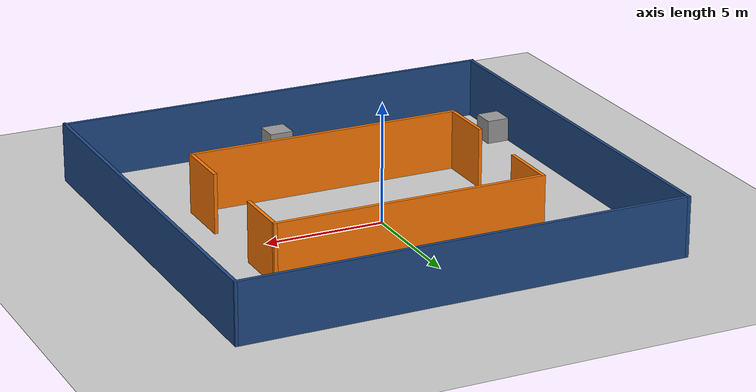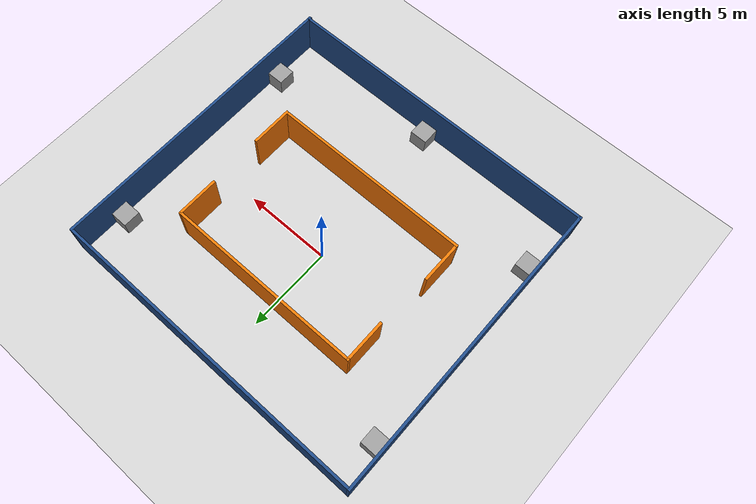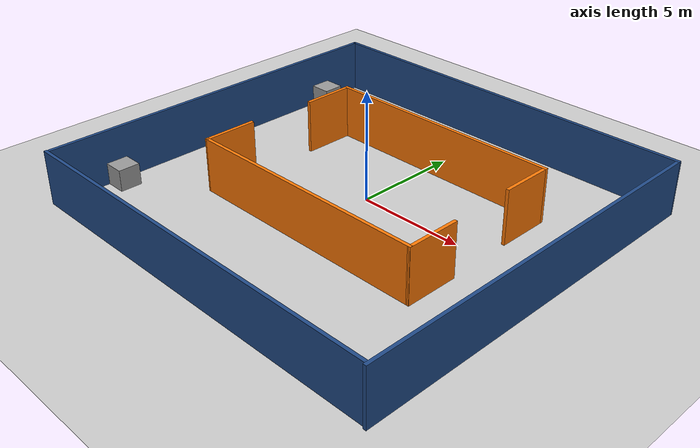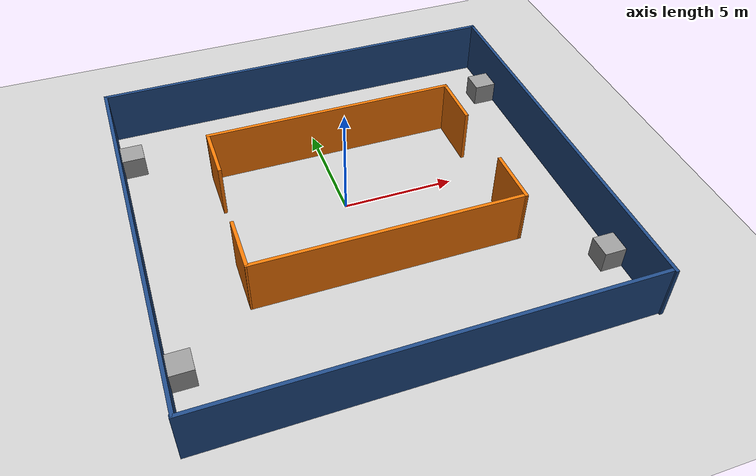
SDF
<sdf version="1.7">
 <world name="default">
  <light name="sun" type="directional">
   <pose>0 0 10 0 -0 0</pose>
   <diffuse>0.8 0.8 0.8 1</diffuse>
   <specular>0.2 0.2 0.2 1</specular>
   <attenuation>
    <range>1000</range>
    <constant>0.9</constant>
    <linear>0.01</linear>
    <quadratic>0.001</quadratic>
   </attenuation>
   <direction>-0.5 0.1 -0.9</direction>
   <spot><inner_angle>0</inner_angle><outer_angle>0</outer_angle><falloff>0</falloff></spot>
  </light>
  <model name="ground_plane">
   <static>1</static>
   <link name="link">
    <collision name="collision">
     <geometry><plane><normal>0 0 1</normal><size>100 100</size></plane></geometry>
     <surface>
      <contact><collide_bitmask>65535</collide_bitmask></contact>
      <friction><ode><mu>100</mu><mu2>50</mu2></ode></friction>
     </surface>
    </collision>
    <visual name="visual">
     <cast_shadows>0</cast_shadows>
     <geometry><plane><normal>0 0 1</normal><size>100 100</size></plane></geometry>
     <material>
      <script><uri>file://media/materials/scripts/gazebo.material</uri><name>Gazebo/Grey</name></script>
     </material>
    </visual>
   </link>
  </model>
  <gravity>0 0 -9.8</gravity>
  <magnetic_field>6e-06 2.3e-05 -4.2e-05</magnetic_field>
  <atmosphere type="adiabatic"/>
  <physics type="ode">
   <max_step_size>0.001</max_step_size>
   <real_time_factor>1</real_time_factor>
   <real_time_update_rate>1000</real_time_update_rate>
  </physics>
  <scene><ambient>0.4 0.4 0.4 1</ambient><background>0.7 0.7 0.7 1</background><shadows>1</shadows></scene>
  <spherical_coordinates>
   <surface_model>EARTH_WGS84</surface_model>
   <latitude_deg>0</latitude_deg>
   <longitude_deg>0</longitude_deg>
   <elevation>0</elevation>
   <heading_deg>0</heading_deg>
  </spherical_coordinates>
  <model name="1">
   <pose>0.331223 -0.788924 0 0 -0 0</pose>
   <link name="Wall_0">
    <collision name="Wall_0_Collision">
     <geometry><box><size>17.75 0.15 2.5</size></box></geometry>
     <pose>0 0 1.25 0 -0 0</pose>
    </collision>
    <visual name="Wall_0_Visual">
     <pose>0 0 1.25 0 -0 0</pose>
     <geometry><box><size>17.75 0.15 2.5</size></box></geometry>
     <material>
      <script><uri>file://media/materials/scripts/gazebo.material</uri><name>Gazebo/Grey</name></script>
      <ambient>0.12549 0.290196 0.529412 1</ambient>
     </material>
     <meta><layer>0</layer></meta>
    </visual>
    <pose>-9.29122 0.058924 0 0 -0 1.5708</pose>
   </link>
   <link name="Wall_1">
    <collision name="Wall_1_Collision">
     <geometry><box><size>18.75 0.15 2.5</size></box></geometry>
     <pose>0 0 1.25 0 -0 0</pose>
    </collision>
    <visual name="Wall_1_Visual">
     <pose>0 0 1.25 0 -0 0</pose>
     <geometry><box><size>18.75 0.15 2.5</size></box></geometry>
     <material>
      <script><uri>file://media/materials/scripts/gazebo.material</uri><name>Gazebo/Grey</name></script>
      <ambient>0.12549 0.290196 0.529412 1</ambient>
     </material>
     <meta><layer>0</layer></meta>
    </visual>
    <pose>0.008777 8.85892 0 0 -0 0</pose>
   </link>
   <link name="Wall_11">
    <collision name="Wall_11_Collision">
     <geometry><box><size>2.5 0.15 2.5</size></box></geometry>
     <pose>0 0 1.25 0 -0 0</pose>
    </collision>
    <visual name="Wall_11_Visual">
     <pose>0 0 1.25 0 -0 0</pose>
     <geometry><box><size>2.5 0.15 2.5</size></box></geometry>
     <material>
      <script><uri>file://media/materials/scripts/gazebo.material</uri><name>Gazebo/Grey</name></script>
      <ambient>0.996078 0.47451 0.0196078 1</ambient>
     </material>
     <meta><layer>0</layer></meta>
    </visual>
    <pose>-5.40371 3.37841 0 0 -0 -1.5708</pose>
   </link>
   <link name="Wall_14">
    <collision name="Wall_14_Collision">
     <geometry><box><size>2.5 0.15 2.5</size></box></geometry>
     <pose>0 0 1.25 0 -0 0</pose>
    </collision>
    <visual name="Wall_14_Visual">
     <pose>0 0 1.25 0 -0 0</pose>
     <geometry><box><size>2.5 0.15 2.5</size></box></geometry>
     <material>
      <script><uri>file://media/materials/scripts/gazebo.material</uri><name>Gazebo/Grey</name></script>
      <ambient>0.996078 0.47451 0.0196078 1</ambient>
     </material>
     <meta><layer>0</layer></meta>
    </visual>
    <pose>-5.59916 -2.21685 0 0 -0 1.5708</pose>
   </link>
   <link name="Wall_16">
    <collision name="Wall_16_Collision">
     <geometry><box><size>2.5 0.15 2.5</size></box></geometry>
     <pose>0 0 1.25 0 -0 0</pose>
    </collision>
    <visual name="Wall_16_Visual">
     <pose>0 0 1.25 0 -0 0</pose>
     <geometry><box><size>2.5 0.15 2.5</size></box></geometry>
     <material>
      <script><uri>file://media/materials/scripts/gazebo.material</uri><name>Gazebo/Grey</name></script>
      <ambient>0.996078 0.47451 0.0196078 1</ambient>
     </material>
     <meta><layer>0</layer></meta>
    </visual>
    <pose>5.98276 -2.22541 0 0 -0 1.5708</pose>
   </link>
   <link name="Wall_18">
    <collision name="Wall_18_Collision">
     <geometry><box><size>2.5 0.15 2.5</size></box></geometry>
     <pose>0 0 1.25 0 -0 0</pose>
    </collision>
    <visual name="Wall_18_Visual">
     <pose>0 0 1.25 0 -0 0</pose>
     <geometry><box><size>2.5 0.15 2.5</size></box></geometry>
     <material>
      <script><uri>file://media/materials/scripts/gazebo.material</uri><name>Gazebo/Grey</name></script>
      <ambient>0.996078 0.47451 0.0196078 1</ambient>
     </material>
     <meta><layer>0</layer></meta>
    </visual>
    <pose>5.90607 3.37841 0 0 -0 -1.5708</pose>
   </link>
   <link name="Wall_2">
    <collision name="Wall_2_Collision">
     <geometry><box><size>17.8679 0.15 2.5</size></box></geometry>
     <pose>0 0 1.25 0 -0 0</pose>
    </collision>
    <visual name="Wall_2_Visual">
     <pose>0 0 1.25 0 -0 0</pose>
     <geometry><box><size>17.8679 0.15 2.5</size></box></geometry>
     <material>
      <script><uri>file://media/materials/scripts/gazebo.material</uri><name>Gazebo/Grey</name></script>
      <ambient>0.12549 0.290196 0.529412 1</ambient>
     </material>
     <meta><layer>0</layer></meta>
    </visual>
    <pose>9.31317 -0 0 0 -0 -1.5703</pose>
   </link>
   <link name="Wall_3">
    <collision name="Wall_3_Collision">
     <geometry><box><size>18.75 0.15 2.5</size></box></geometry>
     <pose>0 0 1.25 0 -0 0</pose>
    </collision>
    <visual name="Wall_3_Visual">
     <pose>0 0 1.25 0 -0 0</pose>
     <geometry><box><size>18.75 0.15 2.5</size></box></geometry>
     <material>
      <script><uri>file://media/materials/scripts/gazebo.material</uri><name>Gazebo/Grey</name></script>
      <ambient>0.12549 0.290196 0.529412 1</ambient>
     </material>
     <meta><layer>0</layer></meta>
    </visual>
    <pose>-0.017608 -8.78857 0 0 -0 3.14159</pose>
   </link>
   <link name="Wall_7">
    <collision name="Wall_7_Collision">
     <geometry><box><size>11.4598 0.15 2.5</size></box></geometry>
     <pose>0 0 1.25 0 -0 0</pose>
    </collision>
    <visual name="Wall_7_Visual">
     <pose>0 0 1.25 0 -0 0</pose>
     <geometry><box><size>11.4598 0.15 2.5</size></box></geometry>
     <material>
      <script><uri>file://media/materials/scripts/gazebo.material</uri><name>Gazebo/Grey</name></script>
      <ambient>0.996078 0.47451 0.0196078 1</ambient>
     </material>
     <meta><layer>0</layer></meta>
    </visual>
    <pose>0.251181 4.55341 0 0 -0 3.14159</pose>
   </link>
   <link name="Wall_9">
    <collision name="Wall_9_Collision">
     <geometry><box><size>11.7167 0.15 2.5</size></box></geometry>
     <pose>0 0 1.25 0 -0 0</pose>
    </collision>
    <visual name="Wall_9_Visual">
     <pose>0 0 1.25 0 -0 0</pose>
     <geometry><box><size>11.7167 0.15 2.5</size></box></geometry>
     <material>
      <script><uri>file://media/materials/scripts/gazebo.material</uri><name>Gazebo/Grey</name></script>
      <ambient>0.996078 0.47451 0.0196078 1</ambient>
     </material>
     <meta><layer>0</layer></meta>
    </visual>
    <pose>0.184199 -3.39613 0 0 -0 -0.00074</pose>
   </link>
   <static>1</static>
  </model>
  <model name="unit_box">
   <pose>9.11179 -6.53072 0.5 0 -0 0.00038</pose>
   <link name="link">
    <inertial>
     <mass>1</mass>
     <inertia>
      <ixx>0.166667</ixx>
      <ixy>0</ixy>
      <ixz>0</ixz>
      <iyy>0.166667</iyy>
      <iyz>0</iyz>
      <izz>0.166667</izz>
     </inertia>
    </inertial>
    <collision name="collision"><geometry><box><size>1 1 1</size></box></geometry></collision>
    <visual name="visual">
     <geometry><box><size>1 1 1</size></box></geometry>
     <material>
      <script><name>Gazebo/Grey</name><uri>file://media/materials/scripts/gazebo.material</uri></script>
     </material>
    </visual>
   </link>
  </model>
  <model name="unit_box_0">
   <pose>0.535246 -9.01132 0.5 0 -0 1e-06</pose>
   <link name="link">
    <inertial>
     <mass>1</mass>
     <inertia>
      <ixx>0.166667</ixx>
      <ixy>0</ixy>
      <ixz>0</ixz>
      <iyy>0.166667</iyy>
      <iyz>0</iyz>
      <izz>0.166667</izz>
     </inertia>
    </inertial>
    <collision name="collision"><geometry><box><size>1 1 1</size></box></geometry></collision>
    <visual name="visual">
     <geometry><box><size>1 1 1</size></box></geometry>
     <material>
      <script><name>Gazebo/Grey</name><uri>file://media/materials/scripts/gazebo.material</uri></script>
     </material>
    </visual>
   </link>
  </model>
  <model name="unit_box_1">
   <pose>-8.42455 -6.51408 0.499995 0 9e-06 2e-06</pose>
   <link name="link">
    <inertial>
     <mass>1</mass>
     <inertia>
      <ixx>0.166667</ixx>
      <ixy>0</ixy>
      <ixz>0</ixz>
      <iyy>0.166667</iyy>
      <iyz>0</iyz>
      <izz>0.166667</izz>
     </inertia>
    </inertial>
    <collision name="collision"><geometry><box><size>1 1 1</size></box></geometry></collision>
    <visual name="visual">
     <geometry><box><size>1 1 1</size></box></geometry>
     <material>
      <script><name>Gazebo/Grey</name><uri>file://media/materials/scripts/gazebo.material</uri></script>
     </material>
    </visual>
   </link>
  </model>
  <model name="unit_box_2">
   <pose>-8.3897 5.51626 0.5 0 -0 4e-06</pose>
   <link name="link">
    <inertial>
     <mass>1</mass>
     <inertia>
      <ixx>0.166667</ixx>
      <ixy>0</ixy>
      <ixz>0</ixz>
      <iyy>0.166667</iyy>
      <iyz>0</iyz>
      <izz>0.166667</izz>
     </inertia>
    </inertial>
    <collision name="collision"><geometry><box><size>1 1 1</size></box></geometry></collision>
    <visual name="visual">
     <geometry><box><size>1 1 1</size></box></geometry>
     <material>
      <script><name>Gazebo/Grey</name><uri>file://media/materials/scripts/gazebo.material</uri></script>
     </material>
    </visual>
   </link>
  </model>
  <model name="unit_box_3">
   <pose>9.05618 5.43081 0.5 0 -0 0</pose>
   <link name="link">
    <inertial>
     <mass>1</mass>
     <inertia>
      <ixx>0.166667</ixx>
      <ixy>0</ixy>
      <ixz>0</ixz>
      <iyy>0.166667</iyy>
      <iyz>0</iyz>
      <izz>0.166667</izz>
     </inertia>
    </inertial>
    <collision name="collision"><geometry><box><size>1 1 1</size></box></geometry></collision>
    <visual name="visual">
     <geometry><box><size>1 1 1</size></box></geometry>
     <material>
      <script><name>Gazebo/Grey</name><uri>file://media/materials/scripts/gazebo.material</uri></script>
     </material>
    </visual>
   </link>
  </model>
  <light name="user_spot_light_0" type="spot">
   <pose>-8.73779 5.48555 1 0 -0 0</pose>
   <diffuse>0.5 0.5 0.5 1</diffuse>
   <specular>0.1 0.1 0.1 1</specular>
   <direction>0 0 -1</direction>
   <attenuation>
    <range>20</range>
    <constant>0.5</constant>
    <linear>0.01</linear>
    <quadratic>0.001</quadratic>
   </attenuation>
   <cast_shadows>0</cast_shadows>
   <spot><inner_angle>0.6</inner_angle><outer_angle>1</outer_angle><falloff>1</falloff></spot>
  </light>
  <light name="user_point_light_0" type="point">
   <pose>-8.11645 5.3641 1 0 -0 0</pose>
   <diffuse>0.5 0.5 0.5 1</diffuse>
   <specular>0.1 0.1 0.1 1</specular>
   <attenuation>
    <range>20</range>
    <constant>0.5</constant>
    <linear>0.01</linear>
    <quadratic>0.001</quadratic>
   </attenuation>
   <cast_shadows>0</cast_shadows>
   <direction>0 0 -1</direction>
  </light>
  <light name="user_point_light_1" type="point">
   <pose>8.91075 5.39276 1 0 -0 0</pose>
   <diffuse>0.5 0.5 0.5 1</diffuse>
   <specular>0.1 0.1 0.1 1</specular>
   <attenuation>
    <range>20</range>
    <constant>0.5</constant>
    <linear>0.01</linear>
    <quadratic>0.001</quadratic>
   </attenuation>
   <cast_shadows>0</cast_shadows>
   <direction>0 0 -1</direction>
  </light>
  <light name="user_point_light_2" type="point">
   <pose>-8.14954 -6.5367 1 0 -0 0</pose>
   <diffuse>0.5 0.5 0.5 1</diffuse>
   <specular>0.1 0.1 0.1 1</specular>
   <attenuation>
    <range>20</range>
    <constant>0.5</constant>
    <linear>0.01</linear>
    <quadratic>0.001</quadratic>
   </attenuation>
   <cast_shadows>0</cast_shadows>
   <direction>0 0 -1</direction>
  </light>
  <light name="user_point_light_3" type="point">
   <pose>0.470535 -8.92855 1 0 -0 0</pose>
   <diffuse>0.5 0.5 0.5 1</diffuse>
   <specular>0.1 0.1 0.1 1</specular>
   <attenuation>
    <range>20</range>
    <constant>0.5</constant>
    <linear>0.01</linear>
    <quadratic>0.001</quadratic>
   </attenuation>
   <cast_shadows>0</cast_shadows>
   <direction>0 0 -1</direction>
  </light>
  <light name="user_point_light_4" type="point">
   <pose>9.11632 -6.75447 1 0 -0 0</pose>
   <diffuse>0.5 0.5 0.5 1</diffuse>
   <specular>0.1 0.1 0.1 1</specular>
   <attenuation>
    <range>20</range>
    <constant>0.5</constant>
    <linear>0.01</linear>
    <quadratic>0.001</quadratic>
   </attenuation>
   <cast_shadows>0</cast_shadows>
   <direction>0 0 -1</direction>
  </light>
 </world>
</sdf>
